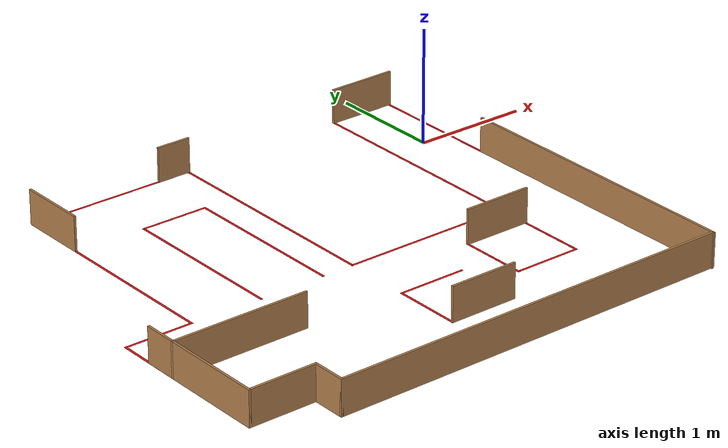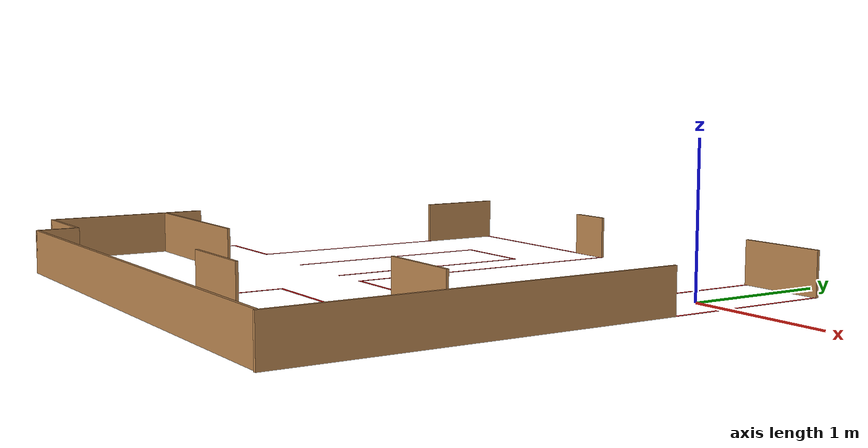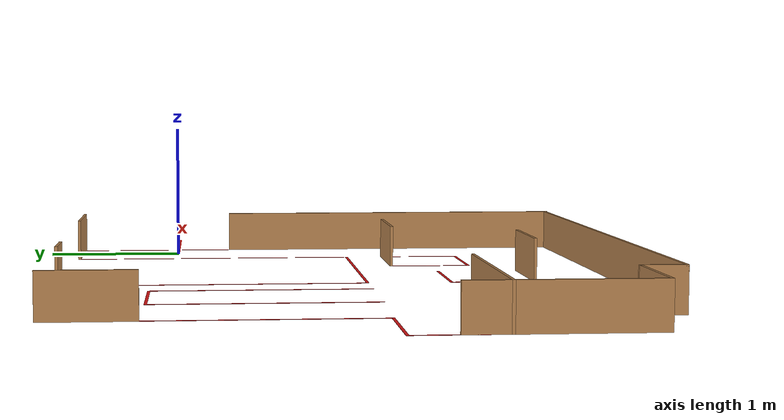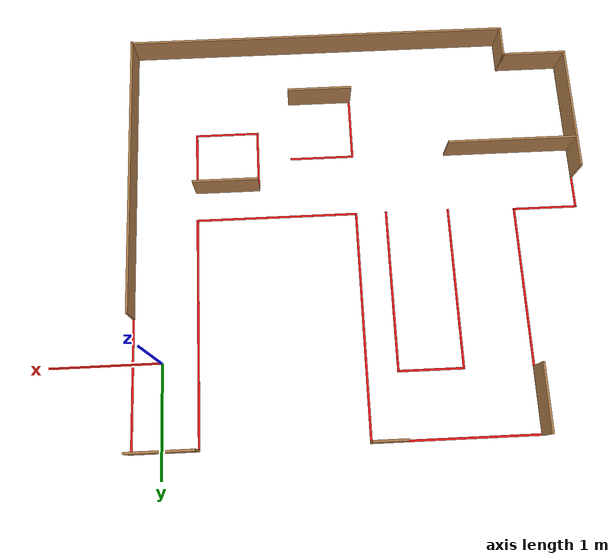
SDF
<?xml version='1.0'?>
<sdf version='1.7'>
  <model name='project_final'>
    <pose>-1.8 -1.145 0 0 -0 0</pose>
    <link name='Wall_0'>
      <collision name='Wall_0_Collision'>
        <geometry>
          <box>
            <size>0.6 0.02 0.3</size>
          </box>
        </geometry>
        <pose>0 0 0.15 0 -0 0</pose>
      </collision>
      <visual name='Wall_0_Visual'>
        <pose>0 0 0.15 0 -0 0</pose>
        <geometry>
          <box>
            <size>0.6 0.02 0.3</size>
          </box>
        </geometry>
        <material>
          <script>
            <uri>file://media/materials/scripts/gazebo.material</uri>
            <name>Gazebo/Wood</name>
          </script>
          <ambient>1 1 1 1</ambient>
        </material>
        <meta>
          <layer>0</layer>
        </meta>
      </visual>
      <pose>1.77 1.905 0 0 -0 3.14159</pose>
    </link>
    <link name='Wall_16'>
      <collision name='Wall_16_Collision'>
        <geometry>
          <box>
            <size>0.3 0.02 0.3</size>
          </box>
        </geometry>
        <pose>0 0 0.15 0 -0 0</pose>
      </collision>
      <visual name='Wall_16_Visual'>
        <pose>0 0 0.15 0 -0 0</pose>
        <geometry>
          <box>
            <size>0.3 0.02 0.3</size>
          </box>
        </geometry>
        <material>
          <script>
            <uri>file://media/materials/scripts/gazebo.material</uri>
            <name>Gazebo/Wood</name>
          </script>
          <ambient>1 1 1 1</ambient>
        </material>
        <meta>
          <layer>0</layer>
        </meta>
      </visual>
      <pose>-0.14 1.905 0 0 -0 3.14159</pose>
    </link>
    <link name='Wall_18'>
      <collision name='Wall_18_Collision'>
        <geometry>
          <box>
            <size>0.6 0.02 0.3</size>
          </box>
        </geometry>
        <pose>0 0 0.15 0 -0 0</pose>
      </collision>
      <visual name='Wall_18_Visual'>
        <pose>0 0 0.15 0 -0 0</pose>
        <geometry>
          <box>
            <size>0.6 0.02 0.3</size>
          </box>
        </geometry>
        <material>
          <script>
            <uri>file://media/materials/scripts/gazebo.material</uri>
            <name>Gazebo/Wood</name>
          </script>
          <ambient>1 1 1 1</ambient>
        </material>
        <meta>
          <layer>0</layer>
        </meta>
      </visual>
      <pose>-1.48 1.615 0 0 -0 -1.5708</pose>
    </link>
    <link name='Wall_2'>
      <collision name='Wall_2_Collision'>
        <geometry>
          <box>
            <size>2.1 0.02 0.001</size>
          </box>
        </geometry>
        <pose>0 0 0.0005 0 -0 0</pose>
      </collision>
      <visual name='Wall_2_Visual'>
        <pose>0 0 0.0005 0 -0 0</pose>
        <geometry>
          <box>
            <size>2.1 0.02 0.001</size>
          </box>
        </geometry>
        <material>
          <script>
            <uri>file://media/materials/scripts/gazebo.material</uri>
            <name>Gazebo/Grey</name>
          </script>
          <ambient>0.901961 0.0823529 0.0823529 1</ambient>
        </material>
        <meta>
          <layer>0</layer>
        </meta>
      </visual>
      <pose>1.48 0.865 0 0 -0 -1.5708</pose>
    </link>
    <link name='Wall_20'>
      <collision name='Wall_20_Collision'>
        <geometry>
          <box>
            <size>1.5 0.02 0.001</size>
          </box>
        </geometry>
        <pose>0 0 0.0005 0 -0 0</pose>
      </collision>
      <visual name='Wall_20_Visual'>
        <pose>0 0 0.0005 0 -0 0</pose>
        <geometry>
          <box>
            <size>1.5 0.02 0.001</size>
          </box>
        </geometry>
        <material>
          <script>
            <uri>file://media/materials/scripts/gazebo.material</uri>
            <name>Gazebo/Grey</name>
          </script>
          <ambient>0.901961 0.0823529 0.0823529 1</ambient>
        </material>
        <meta>
          <layer>0</layer>
        </meta>
      </visual>
      <pose>-1.48 0.585 0 0 -0 -1.5708</pose>
    </link>
    <link name='Wall_22'>
      <collision name='Wall_22_Collision'>
        <geometry>
          <box>
            <size>0.6 0.02 0.001</size>
          </box>
        </geometry>
        <pose>0 0 0.0005 0 -0 0</pose>
      </collision>
      <visual name='Wall_22_Visual'>
        <pose>0 0 0.0005 0 -0 0</pose>
        <geometry>
          <box>
            <size>0.6 0.02 0.001</size>
          </box>
        </geometry>
        <material>
          <script>
            <uri>file://media/materials/scripts/gazebo.material</uri>
            <name>Gazebo/Grey</name>
          </script>
          <ambient>0.901961 0.0823529 0.0823529 1</ambient>
        </material>
        <meta>
          <layer>0</layer>
        </meta>
      </visual>
      <pose>-1.77 -0.155 0 0 -0 3.14159</pose>
    </link>
    <link name='Wall_24'>
      <collision name='Wall_24_Collision'>
        <geometry>
          <box>
            <size>0.6 0.02 0.001</size>
          </box>
        </geometry>
        <pose>0 0 0.0005 0 -0 0</pose>
      </collision>
      <visual name='Wall_24_Visual'>
        <pose>0 0 0.0005 0 -0 0</pose>
        <geometry>
          <box>
            <size>0.6 0.02 0.001</size>
          </box>
        </geometry>
        <material>
          <script>
            <uri>file://media/materials/scripts/gazebo.material</uri>
            <name>Gazebo/Grey</name>
          </script>
          <ambient>0.901961 0.0823529 0.0823529 1</ambient>
        </material>
        <meta>
          <layer>0</layer>
        </meta>
      </visual>
      <pose>-2.06 -0.445 0 0 -0 -1.5708</pose>
    </link>
    <link name='Wall_27'>
      <collision name='Wall_27_Collision'>
        <geometry>
          <box>
            <size>1.2 0.02 0.3</size>
          </box>
        </geometry>
        <pose>0 0 0.15 0 -0 0</pose>
      </collision>
      <visual name='Wall_27_Visual'>
        <pose>0 0 0.15 0 -0 0</pose>
        <geometry>
          <box>
            <size>1.2 0.02 0.3</size>
          </box>
        </geometry>
        <material>
          <script>
            <uri>file://media/materials/scripts/gazebo.material</uri>
            <name>Gazebo/Wood</name>
          </script>
          <ambient>1 1 1 1</ambient>
        </material>
        <meta>
          <layer>0</layer>
        </meta>
      </visual>
      <pose>-1.47 -0.735 0 0 -0 0</pose>
    </link>
    <link name='Wall_29'>
      <collision name='Wall_29_Collision'>
        <geometry>
          <box>
            <size>0.3 0.02 0.3</size>
          </box>
        </geometry>
        <pose>0 0 0.15 0 -0 0</pose>
      </collision>
      <visual name='Wall_29_Visual'>
        <pose>0 0 0.15 0 -0 0</pose>
        <geometry>
          <box>
            <size>0.3 0.02 0.3</size>
          </box>
        </geometry>
        <material>
          <script>
            <uri>file://media/materials/scripts/gazebo.material</uri>
            <name>Gazebo/Wood</name>
          </script>
          <ambient>1 1 1 1</ambient>
        </material>
        <meta>
          <layer>0</layer>
        </meta>
      </visual>
      <pose>-2.06 -0.595 0 0 -0 1.5708</pose>
    </link>
    <link name='Wall_33'>
      <collision name='Wall_33_Collision'>
        <geometry>
          <box>
            <size>0.9 0.02 0.3</size>
          </box>
        </geometry>
        <pose>0 0 0.15 0 -0 0</pose>
      </collision>
      <visual name='Wall_33_Visual'>
        <pose>0 0 0.15 0 -0 0</pose>
        <geometry>
          <box>
            <size>0.9 0.02 0.3</size>
          </box>
        </geometry>
        <material>
          <script>
            <uri>file://media/materials/scripts/gazebo.material</uri>
            <name>Gazebo/Wood</name>
          </script>
          <ambient>1 1 1 1</ambient>
        </material>
        <meta>
          <layer>0</layer>
        </meta>
      </visual>
      <pose>-2.06 -1.175 0 0 -0 -1.5708</pose>
    </link>
    <link name='Wall_35'>
      <collision name='Wall_35_Collision'>
        <geometry>
          <box>
            <size>0.6 0.02 0.3</size>
          </box>
        </geometry>
        <pose>0 0 0.15 0 -0 0</pose>
      </collision>
      <visual name='Wall_35_Visual'>
        <pose>0 0 0.15 0 -0 0</pose>
        <geometry>
          <box>
            <size>0.6 0.02 0.3</size>
          </box>
        </geometry>
        <material>
          <script>
            <uri>file://media/materials/scripts/gazebo.material</uri>
            <name>Gazebo/Wood</name>
          </script>
          <ambient>1 1 1 1</ambient>
        </material>
        <meta>
          <layer>0</layer>
        </meta>
      </visual>
      <pose>-1.77 -1.615 0 0 -0 0</pose>
    </link>
    <link name='Wall_37'>
      <collision name='Wall_37_Collision'>
        <geometry>
          <box>
            <size>0.3 0.02 0.3</size>
          </box>
        </geometry>
        <pose>0 0 0.15 0 -0 0</pose>
      </collision>
      <visual name='Wall_37_Visual'>
        <pose>0 0 0.15 0 -0 0</pose>
        <geometry>
          <box>
            <size>0.3 0.02 0.3</size>
          </box>
        </geometry>
        <material>
          <script>
            <uri>file://media/materials/scripts/gazebo.material</uri>
            <name>Gazebo/Wood</name>
          </script>
          <ambient>1 1 1 1</ambient>
        </material>
        <meta>
          <layer>0</layer>
        </meta>
      </visual>
      <pose>-1.48 -1.755 0 0 -0 -1.5708</pose>
    </link>
    <link name='Wall_4'>
      <collision name='Wall_4_Collision'>
        <geometry>
          <box>
            <size>1.50003 0.02 0.001</size>
          </box>
        </geometry>
        <pose>0 0 0.0005 0 -0 0</pose>
      </collision>
      <visual name='Wall_4_Visual'>
        <pose>0 0 0.0005 0 -0 0</pose>
        <geometry>
          <box>
            <size>1.50003 0.02 0.001</size>
          </box>
        </geometry>
        <material>
          <script>
            <uri>file://media/materials/scripts/gazebo.material</uri>
            <name>Gazebo/Grey</name>
          </script>
          <ambient>0.901961 0.0823529 0.0823529 1</ambient>
        </material>
        <meta>
          <layer>0</layer>
        </meta>
      </visual>
      <pose>0.74 -0.175 0 0 -0 3.14159</pose>
    </link>
    <link name='Wall_43'>
      <collision name='Wall_43_Collision'>
        <geometry>
          <box>
            <size>1.2 0.02 0.001</size>
          </box>
        </geometry>
        <pose>0 0 0.0005 0 -0 0</pose>
      </collision>
      <visual name='Wall_43_Visual'>
        <pose>0 0 0.0005 0 -0 0</pose>
        <geometry>
          <box>
            <size>1.2 0.02 0.001</size>
          </box>
        </geometry>
        <material>
          <script>
            <uri>file://media/materials/scripts/gazebo.material</uri>
            <name>Gazebo/Grey</name>
          </script>
          <ambient>0.901961 0.0823529 0.0823529 1</ambient>
        </material>
        <meta>
          <layer>0</layer>
        </meta>
      </visual>
      <pose>2.06 1.315 0 0 -0 -1.5708</pose>
    </link>
    <link name='Wall_45'>
      <collision name='Wall_45_Collision'>
        <geometry>
          <box>
            <size>2.65 0.02 0.3</size>
          </box>
        </geometry>
        <pose>0 0 0.15 0 -0 0</pose>
      </collision>
      <visual name='Wall_45_Visual'>
        <pose>0 0 0.15 0 -0 0</pose>
        <geometry>
          <box>
            <size>2.65 0.02 0.3</size>
          </box>
        </geometry>
        <material>
          <script>
            <uri>file://media/materials/scripts/gazebo.material</uri>
            <name>Gazebo/Wood</name>
          </script>
          <ambient>1 1 1 1</ambient>
        </material>
        <meta>
          <layer>0</layer>
        </meta>
      </visual>
      <pose>2.06 -0.59 0 0 -0 -1.5708</pose>
    </link>
    <link name='Wall_50'>
      <collision name='Wall_50_Collision'>
        <geometry>
          <box>
            <size>3.55 0.02 0.3</size>
          </box>
        </geometry>
        <pose>0 0 0.15 0 -0 0</pose>
      </collision>
      <visual name='Wall_50_Visual'>
        <pose>0 0 0.15 0 -0 0</pose>
        <geometry>
          <box>
            <size>3.55 0.02 0.3</size>
          </box>
        </geometry>
        <material>
          <script>
            <uri>file://media/materials/scripts/gazebo.material</uri>
            <name>Gazebo/Wood</name>
          </script>
          <ambient>1 1 1 1</ambient>
        </material>
        <meta>
          <layer>0</layer>
        </meta>
      </visual>
      <pose>0.285 -1.895 0 0 -0 0</pose>
    </link>
    <link name='Wall_57'>
      <collision name='Wall_57_Collision'>
        <geometry>
          <box>
            <size>1.5 0.02 0.001</size>
          </box>
        </geometry>
        <pose>0 0 0.0005 0 -0 0</pose>
      </collision>
      <visual name='Wall_57_Visual'>
        <pose>0 0 0.0005 0 -0 0</pose>
        <geometry>
          <box>
            <size>1.5 0.02 0.001</size>
          </box>
        </geometry>
        <material>
          <script>
            <uri>file://media/materials/scripts/gazebo.material</uri>
            <name>Gazebo/Grey</name>
          </script>
          <ambient>0.901961 0.0823529 0.0823529 1</ambient>
        </material>
        <meta>
          <layer>0</layer>
        </meta>
      </visual>
      <pose>-0.28 0.565 0 0 -0 1.5708</pose>
    </link>
    <link name='Wall_59'>
      <collision name='Wall_59_Collision'>
        <geometry>
          <box>
            <size>0.6 0.02 0.001</size>
          </box>
        </geometry>
        <pose>0 0 0.0005 0 -0 0</pose>
      </collision>
      <visual name='Wall_59_Visual'>
        <pose>0 0 0.0005 0 -0 0</pose>
        <geometry>
          <box>
            <size>0.6 0.02 0.001</size>
          </box>
        </geometry>
        <material>
          <script>
            <uri>file://media/materials/scripts/gazebo.material</uri>
            <name>Gazebo/Grey</name>
          </script>
          <ambient>0.901961 0.0823529 0.0823529 1</ambient>
        </material>
        <meta>
          <layer>0</layer>
        </meta>
      </visual>
      <pose>-0.57 1.305 0 0 -0 3.14159</pose>
    </link>
    <link name='Wall_6'>
      <collision name='Wall_6_Collision'>
        <geometry>
          <box>
            <size>2.1 0.02 0.001</size>
          </box>
        </geometry>
        <pose>0 0 0.0005 0 -0 0</pose>
      </collision>
      <visual name='Wall_6_Visual'>
        <pose>0 0 0.0005 0 -0 0</pose>
        <geometry>
          <box>
            <size>2.1 0.02 0.001</size>
          </box>
        </geometry>
        <material>
          <script>
            <uri>file://media/materials/scripts/gazebo.material</uri>
            <name>Gazebo/Grey</name>
          </script>
          <ambient>0.901961 0.0823529 0.0823529 1</ambient>
        </material>
        <meta>
          <layer>0</layer>
        </meta>
      </visual>
      <pose>-0 0.865 0 0 -0 1.5708</pose>
    </link>
    <link name='Wall_61'>
      <collision name='Wall_61_Collision'>
        <geometry>
          <box>
            <size>1.5 0.02 0.001</size>
          </box>
        </geometry>
        <pose>0 0 0.0005 0 -0 0</pose>
      </collision>
      <visual name='Wall_61_Visual'>
        <pose>0 0 0.0005 0 -0 0</pose>
        <geometry>
          <box>
            <size>1.5 0.02 0.001</size>
          </box>
        </geometry>
        <material>
          <script>
            <uri>file://media/materials/scripts/gazebo.material</uri>
            <name>Gazebo/Grey</name>
          </script>
          <ambient>0.901961 0.0823529 0.0823529 1</ambient>
        </material>
        <meta>
          <layer>0</layer>
        </meta>
      </visual>
      <pose>-0.86 0.565 0 0 -0 -1.5708</pose>
    </link>
    <link name='Wall_66'>
      <collision name='Wall_66_Collision'>
        <geometry>
          <box>
            <size>0.6 0.02 0.3</size>
          </box>
        </geometry>
        <pose>0 0 0.15 0 -0 0</pose>
      </collision>
      <visual name='Wall_66_Visual'>
        <pose>0 0 0.15 0 -0 0</pose>
        <geometry>
          <box>
            <size>0.6 0.02 0.3</size>
          </box>
        </geometry>
        <material>
          <script>
            <uri>file://media/materials/scripts/gazebo.material</uri>
            <name>Gazebo/Wood</name>
          </script>
          <ambient>1 1 1 1</ambient>
        </material>
        <meta>
          <layer>0</layer>
        </meta>
      </visual>
      <pose>1.19 -0.455 0 0 -0 3.14159</pose>
    </link>
    <link name='Wall_68'>
      <collision name='Wall_68_Collision'>
        <geometry>
          <box>
            <size>0.6 0.02 0.001</size>
          </box>
        </geometry>
        <pose>0 0 0.0005 0 -0 0</pose>
      </collision>
      <visual name='Wall_68_Visual'>
        <pose>0 0 0.0005 0 -0 0</pose>
        <geometry>
          <box>
            <size>0.6 0.02 0.001</size>
          </box>
        </geometry>
        <material>
          <script>
            <uri>file://media/materials/scripts/gazebo.material</uri>
            <name>Gazebo/Grey</name>
          </script>
          <ambient>0.901961 0.0823529 0.0823529 1</ambient>
        </material>
        <meta>
          <layer>0</layer>
        </meta>
      </visual>
      <pose>0.9 -0.745 0 0 -0 -1.5708</pose>
    </link>
    <link name='Wall_70'>
      <collision name='Wall_70_Collision'>
        <geometry>
          <box>
            <size>0.6 0.02 0.001</size>
          </box>
        </geometry>
        <pose>0 0 0.0005 0 -0 0</pose>
      </collision>
      <visual name='Wall_70_Visual'>
        <pose>0 0 0.0005 0 -0 0</pose>
        <geometry>
          <box>
            <size>0.6 0.02 0.001</size>
          </box>
        </geometry>
        <material>
          <script>
            <uri>file://media/materials/scripts/gazebo.material</uri>
            <name>Gazebo/Grey</name>
          </script>
          <ambient>0.901961 0.0823529 0.0823529 1</ambient>
        </material>
        <meta>
          <layer>0</layer>
        </meta>
      </visual>
      <pose>1.19 -1.035 0 0 -0 0</pose>
    </link>
    <link name='Wall_74'>
      <collision name='Wall_74_Collision'>
        <geometry>
          <box>
            <size>0.6 0.02 0.001</size>
          </box>
        </geometry>
        <pose>0 0 0.0005 0 -0 0</pose>
      </collision>
      <visual name='Wall_74_Visual'>
        <pose>0 0 0.0005 0 -0 0</pose>
        <geometry>
          <box>
            <size>0.6 0.02 0.001</size>
          </box>
        </geometry>
        <material>
          <script>
            <uri>file://media/materials/scripts/gazebo.material</uri>
            <name>Gazebo/Grey</name>
          </script>
          <ambient>0.901961 0.0823529 0.0823529 1</ambient>
        </material>
        <meta>
          <layer>0</layer>
        </meta>
      </visual>
      <pose>1.48 -0.745 0 0 -0 1.5708</pose>
    </link>
    <link name='Wall_78'>
      <collision name='Wall_78_Collision'>
        <geometry>
          <box>
            <size>0.6 0.02 0.001</size>
          </box>
        </geometry>
        <pose>0 0 0.0005 0 -0 0</pose>
      </collision>
      <visual name='Wall_78_Visual'>
        <pose>0 0 0.0005 0 -0 0</pose>
        <geometry>
          <box>
            <size>0.6 0.02 0.001</size>
          </box>
        </geometry>
        <material>
          <script>
            <uri>file://media/materials/scripts/gazebo.material</uri>
            <name>Gazebo/Grey</name>
          </script>
          <ambient>0.901961 0.0823529 0.0823529 1</ambient>
        </material>
        <meta>
          <layer>0</layer>
        </meta>
      </visual>
      <pose>0.29 -0.755 0 0 -0 0</pose>
    </link>
    <link name='Wall_8'>
      <collision name='Wall_8_Collision'>
        <geometry>
          <box>
            <size>1.5 0.02 0.001</size>
          </box>
        </geometry>
        <pose>0 0 0.0005 0 -0 0</pose>
      </collision>
      <visual name='Wall_8_Visual'>
        <pose>0 0 0.0005 0 -0 0</pose>
        <geometry>
          <box>
            <size>1.5 0.02 0.001</size>
          </box>
        </geometry>
        <material>
          <script>
            <uri>file://media/materials/scripts/gazebo.material</uri>
            <name>Gazebo/Grey</name>
          </script>
          <ambient>0.901961 0.0823529 0.0823529 1</ambient>
        </material>
        <meta>
          <layer>0</layer>
        </meta>
      </visual>
      <pose>-0.74 1.905 0 0 -0 3.14159</pose>
    </link>
    <link name='Wall_80'>
      <collision name='Wall_80_Collision'>
        <geometry>
          <box>
            <size>0.6 0.02 0.001</size>
          </box>
        </geometry>
        <pose>0 0 0.0005 0 -0 0</pose>
      </collision>
      <visual name='Wall_80_Visual'>
        <pose>0 0 0.0005 0 -0 0</pose>
        <geometry>
          <box>
            <size>0.6 0.02 0.001</size>
          </box>
        </geometry>
        <material>
          <script>
            <uri>file://media/materials/scripts/gazebo.material</uri>
            <name>Gazebo/Grey</name>
          </script>
          <ambient>0.901961 0.0823529 0.0823529 1</ambient>
        </material>
        <meta>
          <layer>0</layer>
        </meta>
      </visual>
      <pose>-0 -1.045 0 0 -0 -1.5708</pose>
    </link>
    <link name='Wall_82'>
      <collision name='Wall_82_Collision'>
        <geometry>
          <box>
            <size>0.6 0.02 0.3</size>
          </box>
        </geometry>
        <pose>0 0 0.15 0 -0 0</pose>
      </collision>
      <visual name='Wall_82_Visual'>
        <pose>0 0 0.15 0 -0 0</pose>
        <geometry>
          <box>
            <size>0.6 0.02 0.3</size>
          </box>
        </geometry>
        <material>
          <script>
            <uri>file://media/materials/scripts/gazebo.material</uri>
            <name>Gazebo/Wood</name>
          </script>
          <ambient>1 1 1 1</ambient>
        </material>
        <meta>
          <layer>0</layer>
        </meta>
      </visual>
      <pose>0.29 -1.335 0 0 -0 0</pose>
    </link>
    <static>1</static>
  </model>
</sdf>
